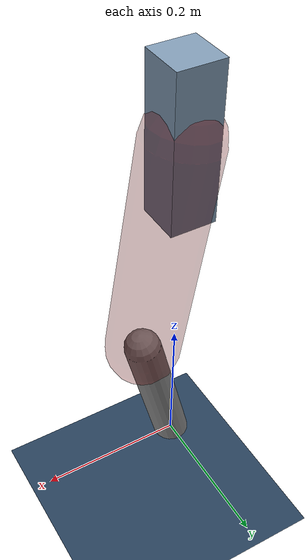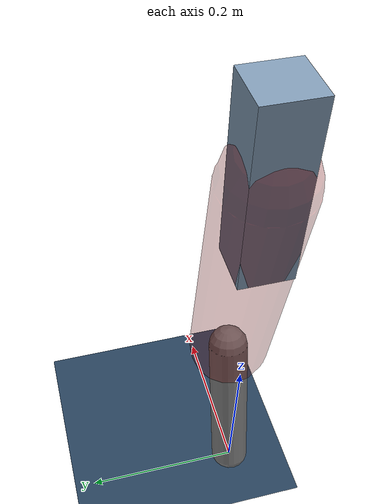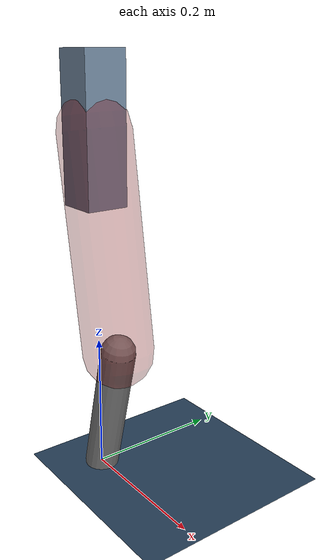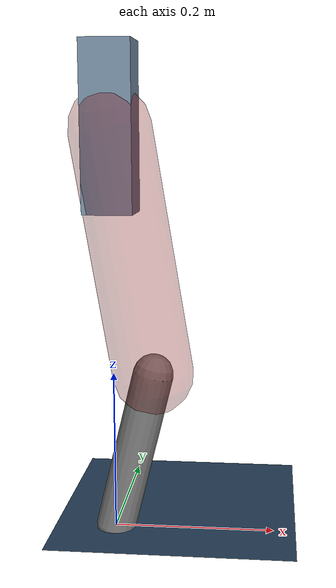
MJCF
<mujoco model="Hopper2D">
	<compiler inertiafromgeom="true" angle="radian" />
	<option timestep="0.001" integrator="implicit" cone="elliptic" solver="Newton" tolerance="1e-10" />

	<default>
		<geom contype="1" conaffinity="1" condim="3" friction="2 0.005 0.0001" solref="0.005 1" />
		<joint limited="true" damping="0.1" />
	</default>

	<asset>
		<texture name="skybox" type="skybox" builtin="gradient" rgb1=".4 .6 .8" rgb2="0 0 0" width="800" height="800" />
		<texture name="grid" type="2d" builtin="checker" rgb1=".1 .2 .3" rgb2=".2 .3 .4" width="300" height="300" mark="edge" markrgb=".2 .3 .4" />
		<material name="ground" texture="grid" texrepeat="1 1" texuniform="true" reflectance="0.1" />
		<material name="leg" rgba="0.5 0.6 0.7 1" />
	</asset>

	<worldbody>

		<geom name="floor" type="plane" size="5 5 0.25" material="ground" />

		<light directional="false" diffuse="0.8 0.8 0.8" specular="0.3 0.3 0.3" pos="0 0 2" dir="0 0 -1" />
		<light mode="targetbodycom" target="base" directional="false" diffuse="0.8 0.8 0.8" specular="0.3 0.3 0.3" pos="0 0 2" dir="0 0 -1" />

		<camera name="fixed" pos="0 -2 1" xyaxes="1 0 0 0 0 1" />
		<camera name="tracking" mode="trackcom" pos="0 -3 1" />

		<body name="root" pos="0 0 0.4975808141736934">
			<joint name="slide_x" type="slide" axis="1 0 0" range="-100 100" />
			<joint name="slide_z" type="slide" axis="0 0 1" range="0 10" />

			<body name="base" pos="0 0 0">
				<geom name="torso" type="box" size="0.03 0.03 0.1" mass="2.63" material="leg" />

				<body name="link1" pos="0 0 0" euler="0 1.4066930917915643 0">
					<joint type="hinge" axis="0 -1 0" pos="0 0 0" name="hinge1" limited="true" range="-3.14 3.14" stiffness="0" damping="0.1" />
					<geom name="thigh" type="capsule" fromto="0 0 0 0.3012194670269578 0 0" size="0.05" rgba="0.5 0 0 0.3" mass="0.991992560972786" />

					<body name="link2" pos="0.3012194670269578 0 0" euler="0 0.4048860180805641 0">
						<joint type="hinge" axis="0 -1 0" pos="0 0 0" name="hinge2" limited="true" range="-3.14 3.14" stiffness="0" damping="0.1" />
						<geom name="shank" type="capsule" fromto="0 0 0 0.20636134714673557 0 0" size="0.025" mass="0.406225212432062" />

					</body>
				</body>
			</body>
		</body>
	</worldbody>

	<actuator>
		<motor name="torque1" joint="hinge1" ctrlrange="-117.1619863238637 117.1619863238637" ctrllimited="true" gear="1" />
		<motor name="torque2" joint="hinge2" ctrlrange="-105.82038129704407 105.82038129704407" ctrllimited="true" gear="1" />
	</actuator>
</mujoco>
